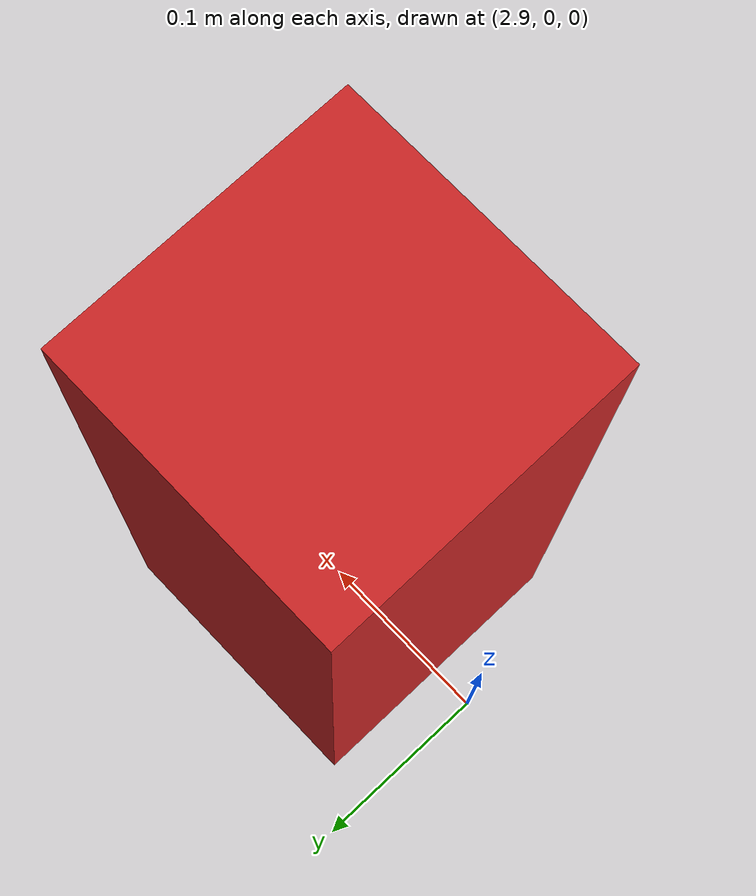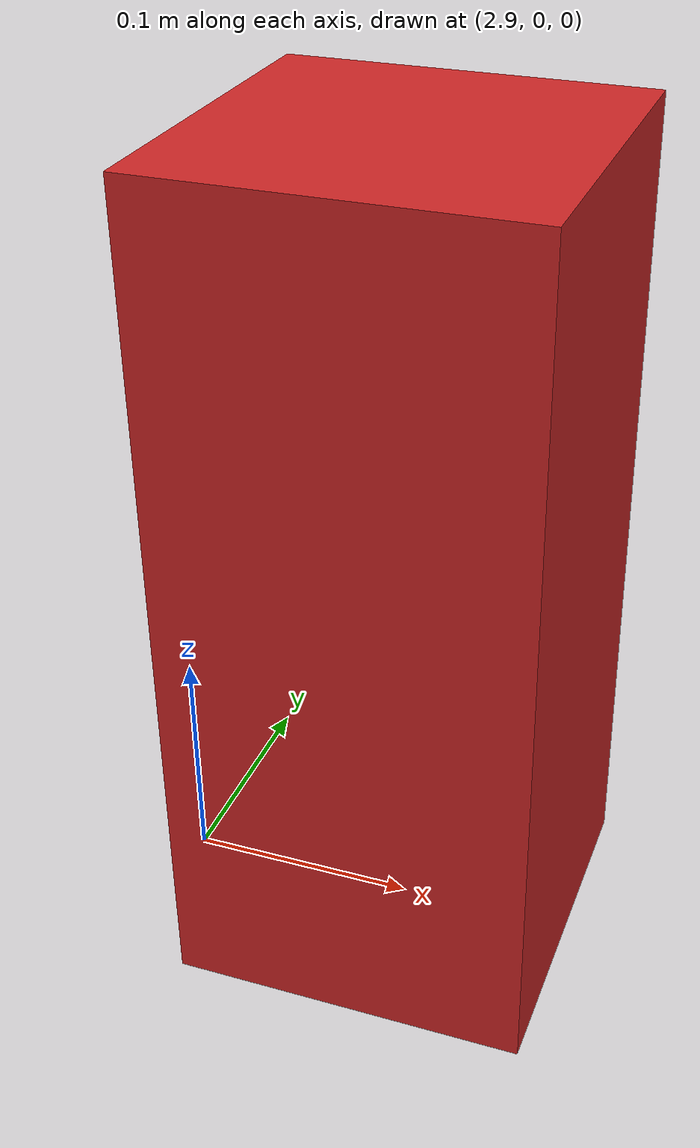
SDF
<?xml version="1.0" ?>
<sdf version="1.6">
  <model name="paper_obstacle">
    <static>false</static>
    <pose>3.0 0.0 0.175 0 0 0</pose> <link name="link">
      <inertial>
        <mass>0.1</mass>
        <inertia>
          <ixx>0.001</ixx> <ixy>0.0</ixy> <ixz>0.0</ixz>
          <iyy>0.001</iyy> <iyz>0.0</iyz>
          <izz>0.001</izz>
        </inertia>
      </inertial>

      <collision name="collision">
        <geometry>
          <box>
            <size>0.15 0.15 0.35</size>
          </box>
        </geometry>
        <surface>
          <friction>
            <ode>
              <mu>0.0</mu>   <mu2>0.0</mu2>
            </ode>
          </friction>
        </surface>
      </collision>

      <visual name="visual">
        <geometry>
          <box>
            <size>0.15 0.15 0.35</size>
          </box>
        </geometry>
        <material>
          <script>
            <uri>file://media/materials/scripts/gazebo.material</uri>
            <name>Gazebo/Red</name>
          </script>
        </material>
      </visual>
    </link>

    <plugin name="obstacle_controller" filename="libgazebo_ros_planar_move.so">
      <ros>
        <namespace>obstacle</namespace>
        <remapping>cmd_vel:=cmd_vel</remapping>
        <remapping>odom:=odom</remapping>
      </ros>
      <update_rate>100</update_rate>
      <publish_rate>10</publish_rate>
      <left_joint>wheel_left_joint</left_joint>
      <right_joint>wheel_right_joint</right_joint>
      <wheel_separation>0.2</wheel_separation>
      <wheel_diameter>0.1</wheel_diameter>
    </plugin>
  </model>
</sdf>
